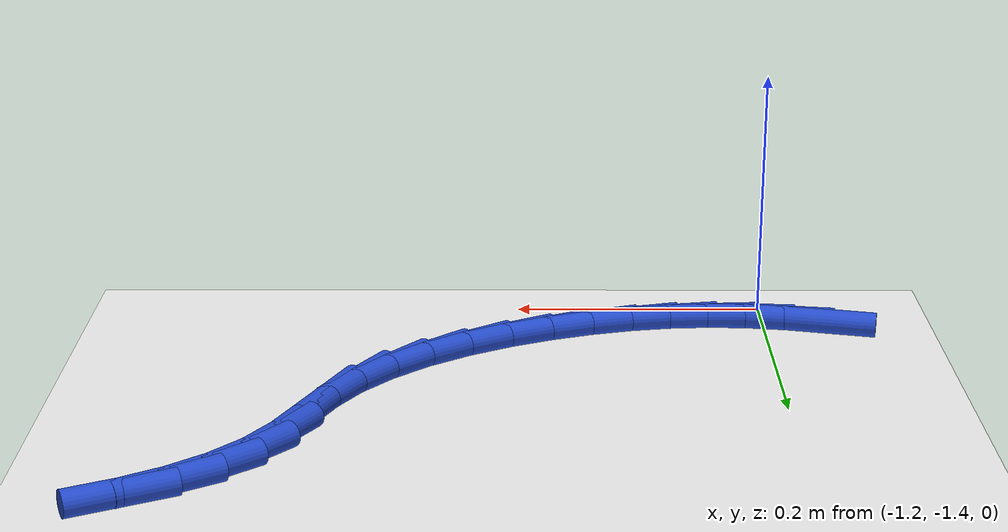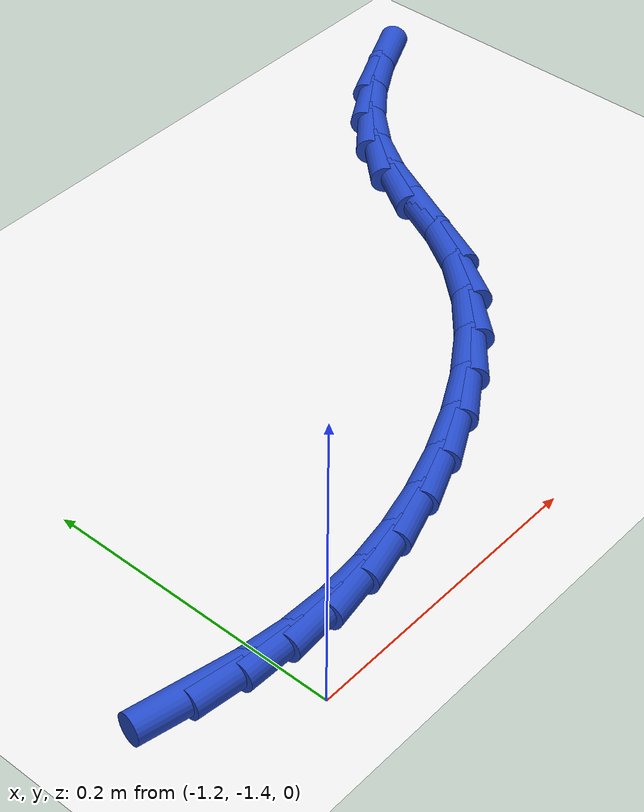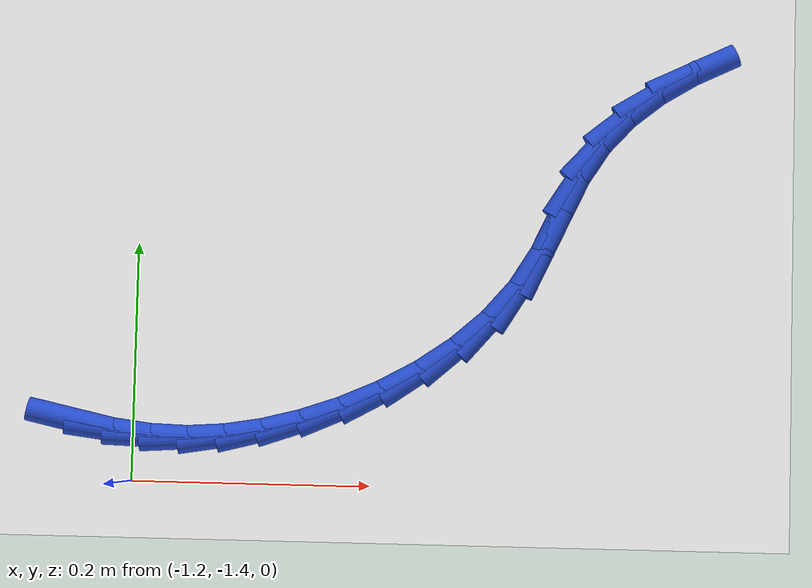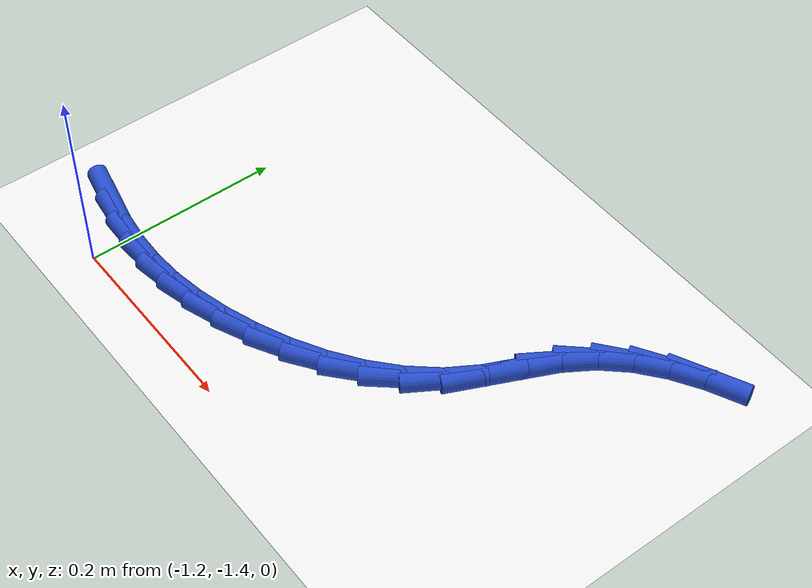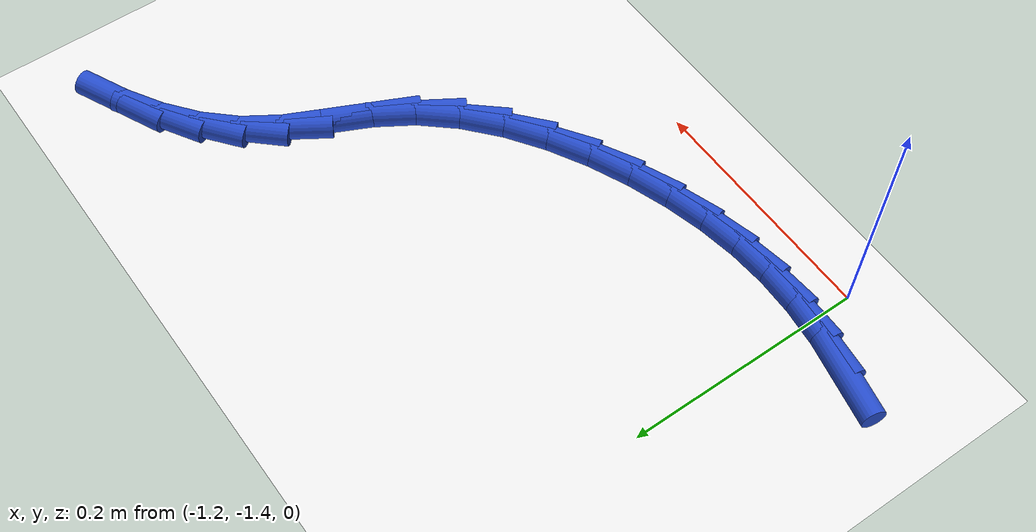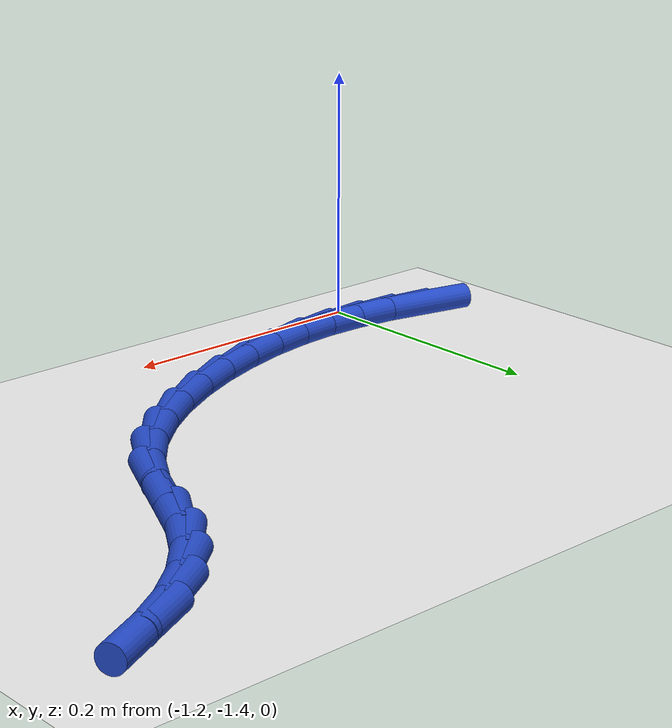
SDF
<sdf version="1.6">
 <world name="default">
  <model name="ground_plane">
   <static>1</static>
   <link name="link">
    <collision name="collision">
     <geometry><plane><normal>0 0 1</normal><size>100 100</size></plane></geometry>
     <surface><friction><ode><mu>100</mu><mu2>50</mu2></ode></friction></surface>
    </collision>
    <visual name="visual">
     <cast_shadows>0</cast_shadows>
     <geometry><plane><normal>0 0 1</normal><size>100 100</size></plane></geometry>
     <material>
      <script><uri>file://media/materials/scripts/gazebo.material</uri><name>Gazebo/WhiteGlow</name></script>
     </material>
    </visual>
   </link>
  </model>
  <model name="line">
   <link name="link_182">
    <pose>-1.2489357642746337 -1.3503750732387267 0.01 0 1.57 -0.21586171648930222</pose>
    <collision name="collision">
     <geometry><cylinder><radius>0.01</radius><length>0.08</length></cylinder></geometry>
    </collision>
    <visual name="visual">
     <material>
      <script><name>Gazebo/Blue</name><uri>file://media/materials/scripts/gazebo.material</uri></script>
     </material>
     <geometry><cylinder><radius>0.01</radius><length>0.08</length></cylinder></geometry>
    </visual>
   </link>
   <link name="link_183">
    <pose>-1.2164602806741494 -1.3574962386014724 0.01 0 1.57 -0.12667985023493422</pose>
    <collision name="collision">
     <geometry><cylinder><radius>0.01</radius><length>0.08</length></cylinder></geometry>
    </collision>
    <visual name="visual">
     <material>
      <script><name>Gazebo/Blue</name><uri>file://media/materials/scripts/gazebo.material</uri></script>
     </material>
     <geometry><cylinder><radius>0.01</radius><length>0.08</length></cylinder></geometry>
    </visual>
   </link>
   <link name="link_184">
    <pose>-1.1848241392840633 -1.3615254767977836 0.01 0 1.57 -0.029971398272832156</pose>
    <collision name="collision">
     <geometry><cylinder><radius>0.01</radius><length>0.08</length></cylinder></geometry>
    </collision>
    <visual name="visual">
     <material>
      <script><name>Gazebo/Blue</name><uri>file://media/materials/scripts/gazebo.material</uri></script>
     </material>
     <geometry><cylinder><radius>0.01</radius><length>0.08</length></cylinder></geometry>
    </visual>
   </link>
   <link name="link_185">
    <pose>-1.1536144152903354 -1.3624611560511546 0.01 0 1.57 0.06911321888219278</pose>
    <collision name="collision">
     <geometry><cylinder><radius>0.01</radius><length>0.08</length></cylinder></geometry>
    </collision>
    <visual name="visual">
     <material>
      <script><name>Gazebo/Blue</name><uri>file://media/materials/scripts/gazebo.material</uri></script>
     </material>
     <geometry><cylinder><radius>0.01</radius><length>0.08</length></cylinder></geometry>
    </visual>
   </link>
   <link name="link_186">
    <pose>-1.1224181838789276 -1.3603016445850795 0.01 0 1.57 0.16485272824961353</pose>
    <collision name="collision">
     <geometry><cylinder><radius>0.01</radius><length>0.08</length></cylinder></geometry>
    </collision>
    <visual name="visual">
     <material>
      <script><name>Gazebo/Blue</name><uri>file://media/materials/scripts/gazebo.material</uri></script>
     </material>
     <geometry><cylinder><radius>0.01</radius><length>0.08</length></cylinder></geometry>
    </visual>
   </link>
   <link name="link_187">
    <pose>-1.0908225202357993 -1.3550453106230531 0.01 0 1.57 0.2523255315963871</pose>
    <collision name="collision">
     <geometry><cylinder><radius>0.01</radius><length>0.08</length></cylinder></geometry>
    </collision>
    <visual name="visual">
     <material>
      <script><name>Gazebo/Blue</name><uri>file://media/materials/scripts/gazebo.material</uri></script>
     </material>
     <geometry><cylinder><radius>0.01</radius><length>0.08</length></cylinder></geometry>
    </visual>
   </link>
   <link name="link_188">
    <pose>-1.0584169618946504 -1.3466904916641997 0.01 0 1.57 0.33217237980655756</pose>
    <collision name="collision">
     <geometry><cylinder><radius>0.01</radius><length>0.08</length></cylinder></geometry>
    </collision>
    <visual name="visual">
     <material>
      <script><name>Gazebo/Blue</name><uri>file://media/materials/scripts/gazebo.material</uri></script>
     </material>
     <geometry><cylinder><radius>0.01</radius><length>0.08</length></cylinder></geometry>
    </visual>
   </link>
   <link name="link_189">
    <pose>-1.0251951103386072 -1.3352304834298867 0.01 0 1.57 0.41391836310910507</pose>
    <collision name="collision">
     <geometry><cylinder><radius>0.01</radius><length>0.08</length></cylinder></geometry>
    </collision>
    <visual name="visual">
     <material>
      <script><name>Gazebo/Blue</name><uri>file://media/materials/scripts/gazebo.material</uri></script>
     </material>
     <geometry><cylinder><radius>0.01</radius><length>0.08</length></cylinder></geometry>
    </visual>
   </link>
   <link name="link_190">
    <pose>-0.9920000797573262 -1.3206479816998764 0.01 0 1.57 0.5029348867623485</pose>
    <collision name="collision">
     <geometry><cylinder><radius>0.01</radius><length>0.08</length></cylinder></geometry>
    </collision>
    <visual name="visual">
     <material>
      <script><name>Gazebo/Blue</name><uri>file://media/materials/scripts/gazebo.material</uri></script>
     </material>
     <geometry><cylinder><radius>0.01</radius><length>0.08</length></cylinder></geometry>
    </visual>
   </link>
   <link name="link_191">
    <pose>-0.9597822779918364 -1.3029243434788558 0.01 0 1.57 0.6036072216354217</pose>
    <collision name="collision">
     <geometry><cylinder><radius>0.01</radius><length>0.08</length></cylinder></geometry>
    </collision>
    <visual name="visual">
     <material>
      <script><name>Gazebo/Blue</name><uri>file://media/materials/scripts/gazebo.material</uri></script>
     </material>
     <geometry><cylinder><radius>0.01</radius><length>0.08</length></cylinder></geometry>
    </visual>
   </link>
   <link name="link_192">
    <pose>-0.9294921128831659 -1.2820409257715075 0.01 0 1.57 0.7204029420689251</pose>
    <collision name="collision">
     <geometry><cylinder><radius>0.01</radius><length>0.08</length></cylinder></geometry>
    </collision>
    <visual name="visual">
     <material>
      <script><name>Gazebo/Blue</name><uri>file://media/materials/scripts/gazebo.material</uri></script>
     </material>
     <geometry><cylinder><radius>0.01</radius><length>0.08</length></cylinder></geometry>
    </visual>
   </link>
   <link name="link_193">
    <pose>-0.9020799922723466 -1.2579790855825201 0.01 0 1.57 0.8575592605412343</pose>
    <collision name="collision">
     <geometry><cylinder><radius>0.01</radius><length>0.08</length></cylinder></geometry>
    </collision>
    <visual name="visual">
     <material>
      <script><name>Gazebo/Blue</name><uri>file://media/materials/scripts/gazebo.material</uri></script>
     </material>
     <geometry><cylinder><radius>0.01</radius><length>0.08</length></cylinder></geometry>
    </visual>
   </link>
   <link name="link_194">
    <pose>-0.8784963240004062 -1.2307201799165775 0.01 0 1.57 1.016667518512825</pose>
    <collision name="collision">
     <geometry><cylinder><radius>0.01</radius><length>0.08</length></cylinder></geometry>
    </collision>
    <visual name="visual">
     <material>
      <script><name>Gazebo/Blue</name><uri>file://media/materials/scripts/gazebo.material</uri></script>
     </material>
     <geometry><cylinder><radius>0.01</radius><length>0.08</length></cylinder></geometry>
    </visual>
   </link>
   <link name="link_195">
    <pose>-0.8596532996982191 -1.2002692916903264 0.01 0 1.57 1.1371674864205497</pose>
    <collision name="collision">
     <geometry><cylinder><radius>0.01</radius><length>0.08</length></cylinder></geometry>
    </collision>
    <visual name="visual">
     <material>
      <script><name>Gazebo/Blue</name><uri>file://media/materials/scripts/gazebo.material</uri></script>
     </material>
     <geometry><cylinder><radius>0.01</radius><length>0.08</length></cylinder></geometry>
    </visual>
   </link>
   <link name="link_196">
    <pose>-0.8446107831253415 -1.1677814914256415 0.01 0 1.57 1.1336972906126694</pose>
    <collision name="collision">
     <geometry><cylinder><radius>0.01</radius><length>0.08</length></cylinder></geometry>
    </collision>
    <visual name="visual">
     <material>
      <script><name>Gazebo/Blue</name><uri>file://media/materials/scripts/gazebo.material</uri></script>
     </material>
     <geometry><cylinder><radius>0.01</radius><length>0.08</length></cylinder></geometry>
    </visual>
   </link>
   <link name="link_197">
    <pose>-0.8297857506218766 -1.1360526432757225 0.01 0 1.57 1.0015680730970387</pose>
    <collision name="collision">
     <geometry><cylinder><radius>0.01</radius><length>0.08</length></cylinder></geometry>
    </collision>
    <visual name="visual">
     <material>
      <script><name>Gazebo/Blue</name><uri>file://media/materials/scripts/gazebo.material</uri></script>
     </material>
     <geometry><cylinder><radius>0.01</radius><length>0.08</length></cylinder></geometry>
    </visual>
   </link>
   <link name="link_198">
    <pose>-0.8116876678538518 -1.1077690981045423 0.01 0 1.57 0.8282347834514578</pose>
    <collision name="collision">
     <geometry><cylinder><radius>0.01</radius><length>0.08</length></cylinder></geometry>
    </collision>
    <visual name="visual">
     <material>
      <script><name>Gazebo/Blue</name><uri>file://media/materials/scripts/gazebo.material</uri></script>
     </material>
     <geometry><cylinder><radius>0.01</radius><length>0.08</length></cylinder></geometry>
    </visual>
   </link>
   <link name="link_199">
    <pose>-0.7894421690906992 -1.083531188409935 0.01 0 1.57 0.6738582485367465</pose>
    <collision name="collision">
     <geometry><cylinder><radius>0.01</radius><length>0.08</length></cylinder></geometry>
    </collision>
    <visual name="visual">
     <material>
      <script><name>Gazebo/Blue</name><uri>file://media/materials/scripts/gazebo.material</uri></script>
     </material>
     <geometry><cylinder><radius>0.01</radius><length>0.08</length></cylinder></geometry>
    </visual>
   </link>
   <link name="link_200">
    <pose>-0.7635424083260685 -1.0628488463015238 0.01 0 1.57 0.5453907890403736</pose>
    <collision name="collision">
     <geometry><cylinder><radius>0.01</radius><length>0.08</length></cylinder></geometry>
    </collision>
    <visual name="visual">
     <material>
      <script><name>Gazebo/Blue</name><uri>file://media/materials/scripts/gazebo.material</uri></script>
     </material>
     <geometry><cylinder><radius>0.01</radius><length>0.08</length></cylinder></geometry>
    </visual>
   </link>
   <link name="link_201">
    <pose>-0.7344934667655065 -1.0452224936520766 0.01 0 1.57 0.443853645509417</pose>
    <collision name="collision">
     <geometry><cylinder><radius>0.01</radius><length>0.08</length></cylinder></geometry>
    </collision>
    <visual name="visual">
     <material>
      <script><name>Gazebo/Blue</name><uri>file://media/materials/scripts/gazebo.material</uri></script>
     </material>
     <geometry><cylinder><radius>0.01</radius><length>0.08</length></cylinder></geometry>
    </visual>
   </link>
  </model>
 </world>
</sdf>
